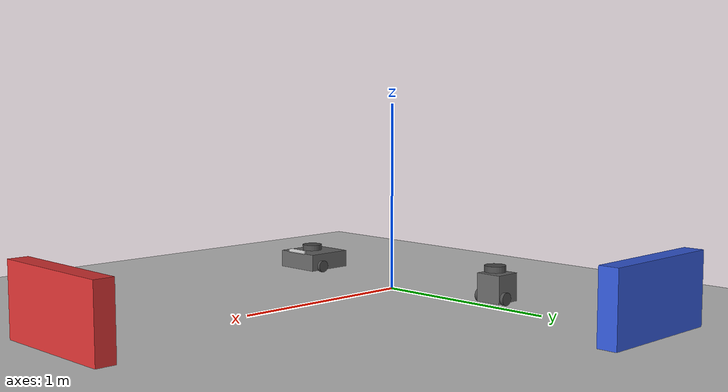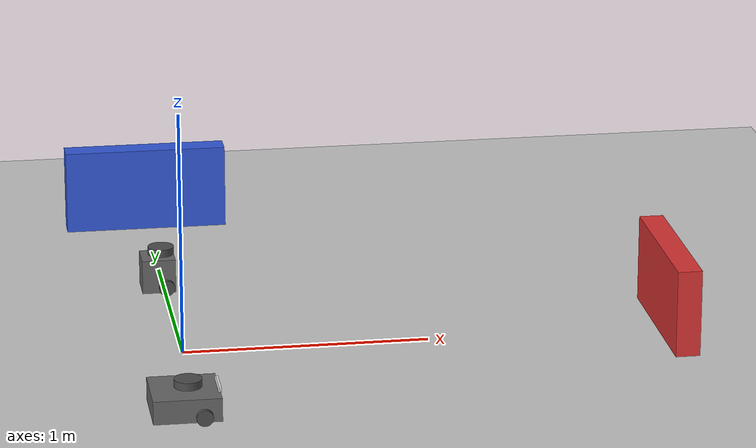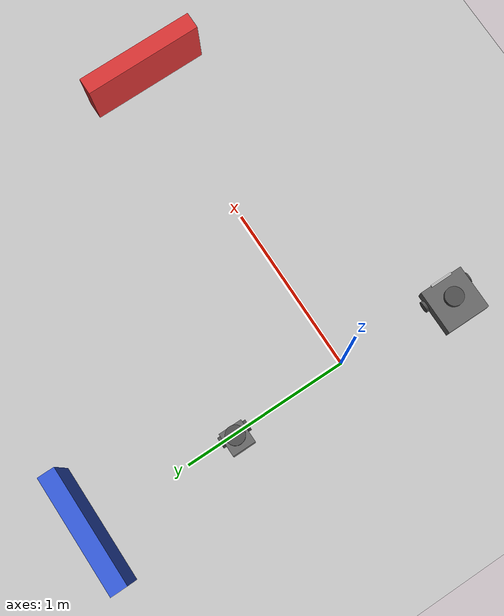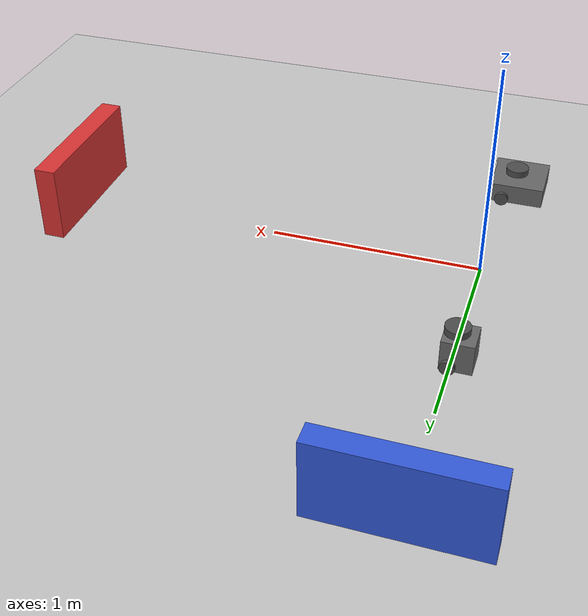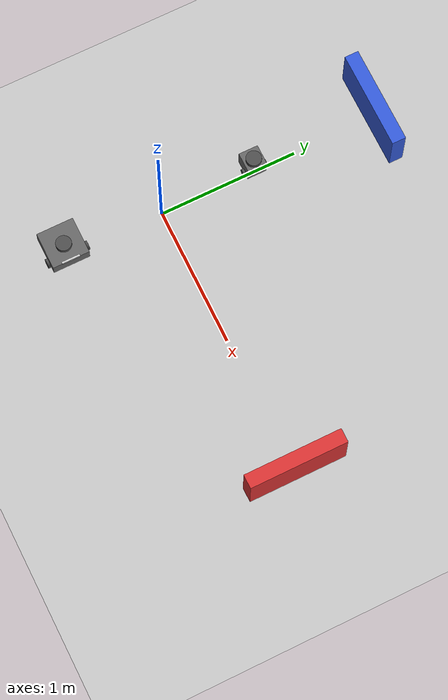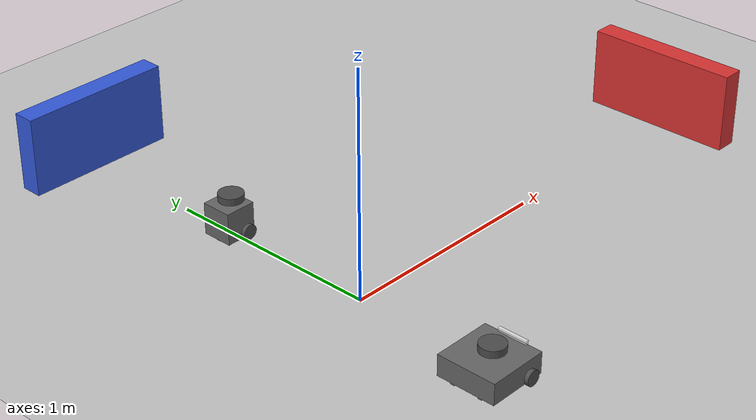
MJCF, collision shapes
<?xml version='1.0' encoding='utf-8'?>
<mujoco model="tb3_burger_real_waffle_mirror">
  <compiler angle="radian" />
  <option timestep="0.001" gravity="0 0 -9.81" integrator="implicit" />
  <visual>
    <global offwidth="320" offheight="240" />
    <map znear="0.05" zfar="10" />
  </visual>
  <asset>
    <texture name="minimal_grid" type="2d" builtin="checker" width="256" height="256" rgb1="0.92 0.92 0.92" rgb2="0.62 0.62 0.62" />
    <material name="minimal_grid" texture="minimal_grid" texrepeat="4 4" texuniform="true" reflectance="0.1" />
    <mesh name="burger_base" content_type="model/stl" file="../../../hakoniwa-mbody-registry/bodies/turtlebot3_burger/source/turtlebot3_description/meshes/bases/burger_base.stl" scale="0.001 0.001 0.001" />
    <mesh name="left_tire" content_type="model/stl" file="../../../hakoniwa-mbody-registry/bodies/turtlebot3_burger/source/turtlebot3_description/meshes/wheels/left_tire.stl" scale="0.001 0.001 0.001" />
    <mesh name="right_tire" content_type="model/stl" file="../../../hakoniwa-mbody-registry/bodies/turtlebot3_burger/source/turtlebot3_description/meshes/wheels/right_tire.stl" scale="0.001 0.001 0.001" />
    <mesh name="lds" content_type="model/stl" file="../../../hakoniwa-mbody-registry/bodies/turtlebot3_burger/source/turtlebot3_description/meshes/sensors/lds.stl" scale="0.001 0.001 0.001" />
    <material name="mirror_heading" rgba="0.95 0.95 0.95 0.85" />
  </asset>
  <worldbody>
    <geom name="ground" type="plane" size="6 6 0.05" material="minimal_grid" friction="1.0" />
    <geom name="front_marker" type="box" pos="2.0 0 0.18" size="0.05 0.35 0.18" rgba="0.85 0.2 0.2 1" contype="0" conaffinity="0" />
    <geom name="side_marker" type="box" pos="0 1.6 0.18" size="0.35 0.05 0.18" rgba="0.2 0.35 0.85 1" contype="0" conaffinity="0" />
    <light name="top_light" pos="0 0 3" dir="0 0 -1" diffuse="0.8 0.8 0.8" />
    <camera name="overview" pos="1.6 -2.1 1.3" xyaxes="0.8 0.6 0 -0.35 0.47 0.81" />

    <body name="base_footprint" pos="0 0.7 0.02">
      <freejoint />
      <body name="base_link" pos="0 0 0.01">
        <inertial pos="0 0 0" quat="0.994532 -0.0072214 -0.0815456 -0.0648458" mass="0.825735" diaginertia="0.00221987 0.00211778 0.00200059" />
        <geom pos="-0.032 0 0" type="mesh" contype="0" conaffinity="0" group="1" density="0" rgba="0.4 0.4 0.4 1" mesh="burger_base" />
        <geom size="0.07 0.07 0.0715" pos="-0.032 0 0.07" type="box" rgba="0.4 0.4 0.4 1" />
        <body name="wheel_left_link" pos="0 0.08 0.023" quat="0.707388 -0.706825 0 0">
          <inertial pos="0 0 0" quat="-0.000890159 0.706886 0.000889646 0.707326" mass="0.0284989" diaginertia="2.07126e-05 1.11924e-05 1.11756e-05" />
          <joint name="wheel_left_joint" pos="0 0 0" axis="0 0 1" />
          <geom quat="0.707388 0.706825 0 0" type="mesh" contype="0" conaffinity="0" group="1" density="0" rgba="0.3 0.3 0.3 1" mesh="left_tire" />
          <geom size="0.033 0.009" type="cylinder" rgba="0.3 0.3 0.3 1" />
        </body>
        <body name="wheel_right_link" pos="0 -0.08 0.023" quat="0.707388 -0.706825 0 0">
          <inertial pos="0 0 0" quat="-0.000890159 0.706886 0.000889646 0.707326" mass="0.0284989" diaginertia="2.07126e-05 1.11924e-05 1.11756e-05" />
          <joint name="wheel_right_joint" pos="0 0 0" axis="0 0 1" />
          <geom quat="0.707388 0.706825 0 0" type="mesh" contype="0" conaffinity="0" group="1" density="0" rgba="0.3 0.3 0.3 1" mesh="right_tire" />
          <geom size="0.033 0.009" type="cylinder" rgba="0.3 0.3 0.3 1" />
        </body>
        <body name="caster_back_link" pos="-0.081 0 -0.004" quat="0.707388 -0.706825 0 0">
          <inertial pos="0 0 0" mass="0.005" diaginertia="0.001 0.001 0.001" />
          <geom size="0.015 0.0045 0.01" pos="0 0.001 0" type="box" />
        </body>
        <body name="imu_link" pos="-0.032 0 0.068" />
        <body name="base_scan" pos="-0.032 0 0.172">
          <inertial pos="0 0 0" mass="0.114" diaginertia="0.001 0.001 0.001" />
          <geom type="mesh" contype="0" conaffinity="0" group="1" density="0" rgba="0.3 0.3 0.3 1" mesh="lds" />
          <geom size="0.055 0.01575" pos="0.015 0 -0.0065" type="cylinder" rgba="0.3 0.3 0.3 1" />
        </body>
      </body>
    </body>

    <body name="waffle_mirror_base_link" pos="0 -0.7 0.03">
      <freejoint />
      <geom name="waffle_mirror_base" size="0.133 0.133 0.047" pos="-0.064 0 0.047" type="box" rgba="0.4 0.4 0.4 1" contype="0" conaffinity="0" />
      <body name="waffle_mirror_wheel_left_link" pos="0 0.144 0.023" quat="0.707388 -0.706825 0 0">
        <geom name="waffle_mirror_left_tire" size="0.033 0.009" type="cylinder" rgba="0.3 0.3 0.3 1" contype="0" conaffinity="0" />
      </body>
      <body name="waffle_mirror_wheel_right_link" pos="0 -0.144 0.023" quat="0.707388 -0.706825 0 0">
        <geom name="waffle_mirror_right_tire" size="0.033 0.009" type="cylinder" rgba="0.3 0.3 0.3 1" contype="0" conaffinity="0" />
      </body>
      <body name="waffle_mirror_caster_back_right_link" pos="-0.177 -0.064 -0.004" quat="0.707388 -0.706825 0 0">
        <geom name="waffle_mirror_caster_back_right" size="0.015 0.0045 0.01" pos="0 0.001 0" type="box" contype="0" conaffinity="0" />
      </body>
      <body name="waffle_mirror_caster_back_left_link" pos="-0.177 0.064 -0.004" quat="0.707388 -0.706825 0 0">
        <geom name="waffle_mirror_caster_back_left" size="0.015 0.0045 0.01" pos="0 0.001 0" type="box" contype="0" conaffinity="0" />
      </body>
      <body name="waffle_mirror_base_scan" pos="-0.064 0 0.122">
        <geom name="waffle_mirror_lds" size="0.055 0.01575" pos="0.015 0 -0.0065" type="cylinder" rgba="0.3 0.3 0.3 1" contype="0" conaffinity="0" />
      </body>
      <body name="waffle_mirror_camera_link" pos="0.064 -0.065 0.094">
        <geom name="waffle_mirror_camera" size="0.006 0.066 0.01" pos="0.003 0.065 0.007" type="box" material="mirror_heading" contype="0" conaffinity="0" />
        <body name="waffle_mirror_camera_rgb_frame" pos="0.005 0.018 0.013">
          <body name="waffle_mirror_camera_rgb_optical_frame" quat="0.500398 -0.5 0.499602 -0.5" />
        </body>
        <body name="waffle_mirror_camera_depth_frame" pos="0.005 0.028 0.013">
          <body name="waffle_mirror_camera_depth_optical_frame" quat="0.500398 -0.5 0.499602 -0.5" />
        </body>
      </body>
    </body>
  </worldbody>
  <actuator>
    <velocity name="left_motor" joint="wheel_left_joint" ctrllimited="true" ctrlrange="-12 12" kv="0.75" />
    <velocity name="right_motor" joint="wheel_right_joint" ctrllimited="true" ctrlrange="-12 12" kv="0.75" />
  </actuator>
</mujoco>
